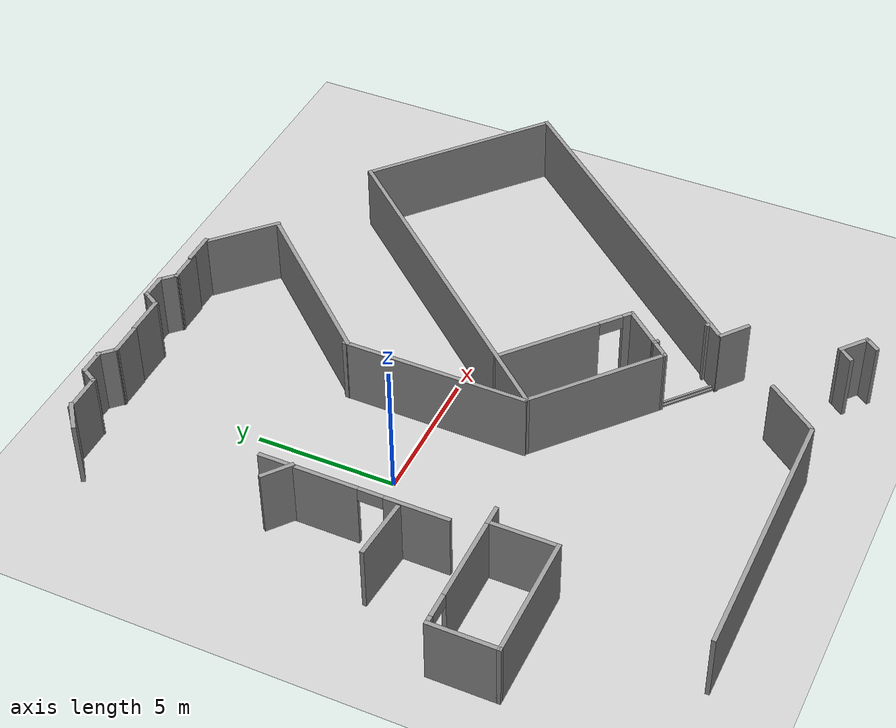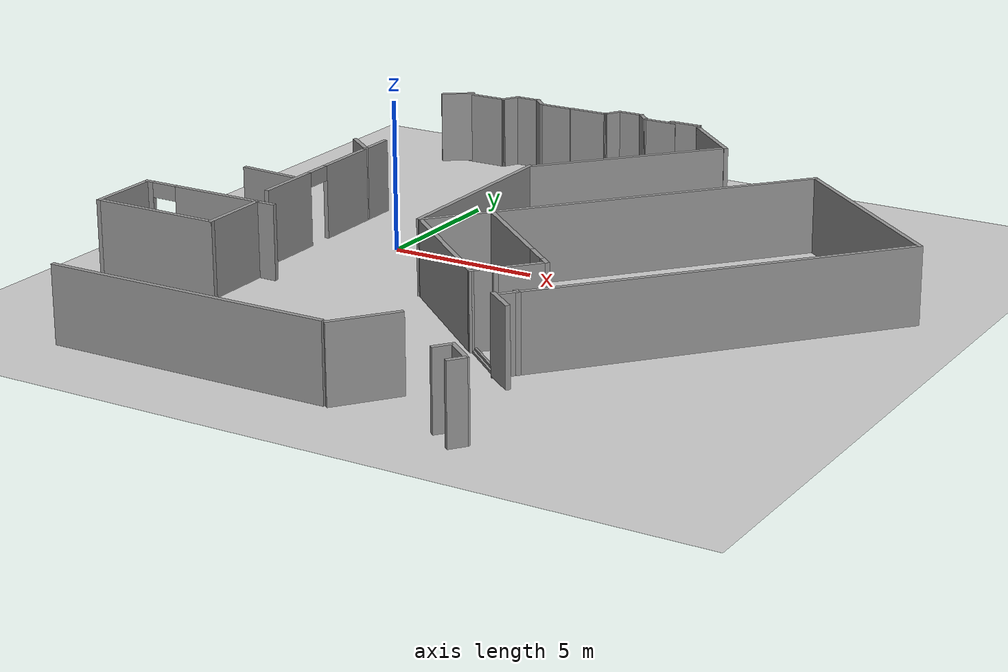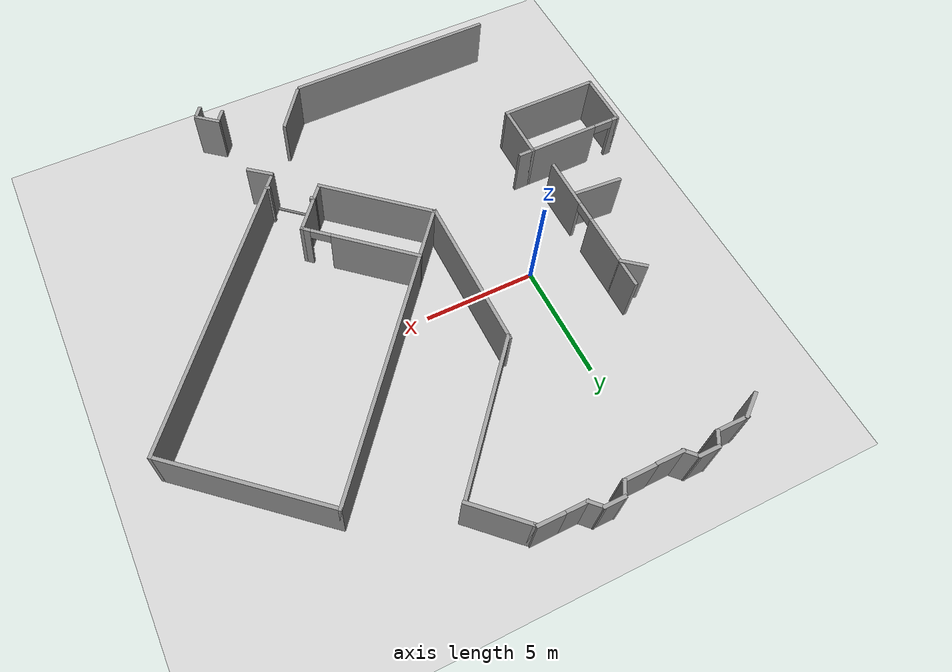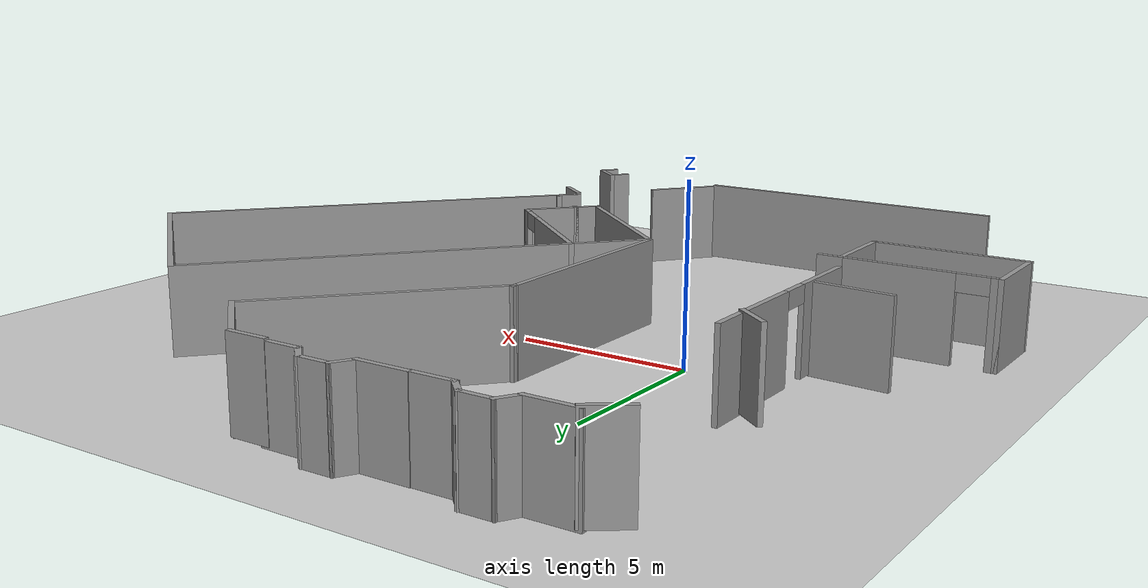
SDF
<sdf version="1.6">
 <world name="default">
  <model name="ground_plane">
   <static>1</static>
   <link name="link">
    <collision name="collision">
     <geometry><plane><normal>0 0 1</normal><size>100 100</size></plane></geometry>
     <surface>
      <contact><collide_bitmask>65535</collide_bitmask></contact>
      <friction><ode><mu>100</mu><mu2>50</mu2></ode></friction>
     </surface>
    </collision>
    <visual name="visual">
     <cast_shadows>0</cast_shadows>
     <geometry><plane><normal>0 0 1</normal><size>100 100</size></plane></geometry>
     <material>
      <script><uri>file://media/materials/scripts/gazebo.material</uri><name>Gazebo/Grey</name></script>
     </material>
    </visual>
   </link>
  </model>
  <model name="wall(6.75)_0_clone">
   <pose>3.09203 -0.032897 0 0 0 -1.5756</pose>
   <link name="Wall_106">
    <collision name="Wall_106_Collision">
     <geometry><box><size>6.75 0.15 2.5</size></box></geometry>
     <pose>0 0 1.25 0 -0 0</pose>
    </collision>
    <visual name="Wall_106_Visual">
     <pose>0 0 1.25 0 -0 0</pose>
     <geometry><box><size>6.75 0.15 2.5</size></box></geometry>
     <material>
      <script><uri>file://media/materials/scripts/gazebo.material</uri><name>Gazebo/Grey</name></script>
      <ambient>1 1 1 1</ambient>
     </material>
     <meta><layer>0</layer></meta>
    </visual>
   </link>
   <static>1</static>
  </model>
  <model name="wall(1.2)_clone">
   <link name="Wall_106">
    <inertial>
     <mass>1</mass>
     <inertia><ixx>1</ixx><ixy>0</ixy><ixz>0</ixz><iyy>1</iyy><iyz>0</iyz><izz>1</izz></inertia>
    </inertial>
    <visual name="Wall_106_Visual">
     <pose>0 0 1.25 0 -0 0</pose>
     <geometry><box><size>1.2 0.15 2.5</size></box></geometry>
     <material>
      <script><uri>file://media/materials/scripts/gazebo.material</uri><name>Gazebo/Grey</name></script>
      <ambient>1 1 1 1</ambient>
      <shader type="vertex"><normal_map>__default__</normal_map></shader>
      <diffuse>0.7 0.7 0.7 1</diffuse>
      <specular>0.01 0.01 0.01 1</specular>
      <emissive>0 0 0 1</emissive>
     </material>
     <meta><layer>0</layer></meta>
    </visual>
    <collision name="Wall_106_Collision">
     <pose>0 0 1.25 0 -0 0</pose>
     <geometry><box><size>6.75 0.15 2.5</size></box></geometry>
     <surface>
      <friction>
       <ode><mu>1</mu><mu2>1</mu2><fdir1>0 0 0</fdir1><slip1>0</slip1><slip2>0</slip2></ode>
       <torsional>
        <coefficient>1</coefficient>
        <patch_radius>0</patch_radius>
        <surface_radius>0</surface_radius>
        <use_patch_radius>1</use_patch_radius>
        <ode><slip>0</slip></ode>
       </torsional>
      </friction>
      <bounce><restitution_coefficient>0</restitution_coefficient><threshold>1e+06</threshold></bounce>
      <contact>
       <collide_without_contact>0</collide_without_contact>
       <collide_without_contact_bitmask>1</collide_without_contact_bitmask>
       <collide_bitmask>1</collide_bitmask>
       <ode>
        <soft_cfm>0</soft_cfm>
        <soft_erp>0.2</soft_erp>
        <kp>1e+13</kp>
        <kd>1</kd>
        <max_vel>0.01</max_vel>
        <min_depth>0</min_depth>
       </ode>
       <bullet>
        <split_impulse>1</split_impulse>
        <split_impulse_penetration_threshold>-0.01</split_impulse_penetration_threshold>
        <soft_cfm>0</soft_cfm>
        <soft_erp>0.2</soft_erp>
        <kp>1e+13</kp>
        <kd>1</kd>
       </bullet>
      </contact>
     </surface>
    </collision>
   </link>
   <static>1</static>
   <pose>-3.68257 9.64813 0.050769 0 -0 0.640713</pose>
  </model>
  <model name="lift">
   <pose>-1.30167 10.2174 0 0 0 -3.13924</pose>
   <link name="Wall_113">
    <collision name="Wall_113_Collision">
     <geometry><box><size>1.5 0.15 2.5</size></box></geometry>
     <pose>0 0 1.25 0 -0 0</pose>
    </collision>
    <visual name="Wall_113_Visual">
     <pose>0 0 1.25 0 -0 0</pose>
     <geometry><box><size>1.5 0.15 2.5</size></box></geometry>
     <material>
      <script><uri>file://media/materials/scripts/gazebo.material</uri><name>Gazebo/Grey</name></script>
      <ambient>1 1 1 1</ambient>
     </material>
     <meta><layer>0</layer></meta>
    </visual>
    <pose>1.33713 0.261614 0 0 -0 3.14159</pose>
   </link>
   <link name="Wall_114">
    <collision name="Wall_114_Collision">
     <geometry><box><size>0.75 0.15 2.5</size></box></geometry>
     <pose>0 0 1.25 0 -0 0</pose>
    </collision>
    <visual name="Wall_114_Visual">
     <pose>0 0 1.25 0 -0 0</pose>
     <geometry><box><size>0.75 0.15 2.5</size></box></geometry>
     <material>
      <script><uri>file://media/materials/scripts/gazebo.material</uri><name>Gazebo/Grey</name></script>
      <ambient>1 1 1 1</ambient>
     </material>
     <meta><layer>0</layer></meta>
    </visual>
    <pose>0.512132 0.001807 0 0 -0 -2.0944</pose>
   </link>
   <link name="Wall_115">
    <collision name="Wall_115_Collision">
     <geometry><box><size>1 0.15 2.5</size></box></geometry>
     <pose>0 0 1.25 0 -0 0</pose>
    </collision>
    <visual name="Wall_115_Visual">
     <pose>0 0 1.25 0 -0 0</pose>
     <geometry><box><size>1 0.15 2.5</size></box></geometry>
     <material>
      <script><uri>file://media/materials/scripts/gazebo.material</uri><name>Gazebo/Grey</name></script>
      <ambient>1 1 1 1</ambient>
     </material>
     <meta><layer>0</layer></meta>
    </visual>
    <pose>-0.062868 -0.258001 0 0 -0 3.14159</pose>
   </link>
   <link name="Wall_116">
    <collision name="Wall_116_Collision">
     <geometry><box><size>0.75 0.15 2.5</size></box></geometry>
     <pose>0 0 1.25 0 -0 0</pose>
    </collision>
    <visual name="Wall_116_Visual">
     <pose>0 0 1.25 0 -0 0</pose>
     <geometry><box><size>0.75 0.15 2.5</size></box></geometry>
     <material>
      <script><uri>file://media/materials/scripts/gazebo.material</uri><name>Gazebo/Grey</name></script>
      <ambient>1 1 1 1</ambient>
     </material>
     <meta><layer>0</layer></meta>
    </visual>
    <pose>-0.7 -0.045868 0 0 -0 2.35619</pose>
   </link>
   <link name="Wall_117">
    <collision name="Wall_117_Collision">
     <geometry><box><size>1.25 0.15 2.5</size></box></geometry>
     <pose>0 0 1.25 0 -0 0</pose>
    </collision>
    <visual name="Wall_117_Visual">
     <pose>0 0 1.25 0 -0 0</pose>
     <geometry><box><size>1.25 0.15 2.5</size></box></geometry>
     <material>
      <script><uri>file://media/materials/scripts/gazebo.material</uri><name>Gazebo/Grey</name></script>
      <ambient>1 1 1 1</ambient>
     </material>
     <meta><layer>0</layer></meta>
    </visual>
    <pose>-1.46213 0.166263 0 0 -0 3.14159</pose>
   </link>
   <static>1</static>
  </model>
  <model name="lift_clone">
   <pose>2.81764 10.3434 0 0 0 -3.13924</pose>
   <link name="Wall_113">
    <collision name="Wall_113_Collision">
     <geometry><box><size>1.5 0.15 2.5</size></box></geometry>
     <pose>0 0 1.25 0 -0 0</pose>
    </collision>
    <visual name="Wall_113_Visual">
     <pose>0 0 1.25 0 -0 0</pose>
     <geometry><box><size>1.5 0.15 2.5</size></box></geometry>
     <material>
      <script><uri>file://media/materials/scripts/gazebo.material</uri><name>Gazebo/Grey</name></script>
      <ambient>1 1 1 1</ambient>
     </material>
     <meta><layer>0</layer></meta>
    </visual>
    <pose>1.33713 0.261614 0 0 -0 3.14159</pose>
   </link>
   <link name="Wall_114">
    <collision name="Wall_114_Collision">
     <geometry><box><size>0.75 0.15 2.5</size></box></geometry>
     <pose>0 0 1.25 0 -0 0</pose>
    </collision>
    <visual name="Wall_114_Visual">
     <pose>0 0 1.25 0 -0 0</pose>
     <geometry><box><size>0.75 0.15 2.5</size></box></geometry>
     <material>
      <script><uri>file://media/materials/scripts/gazebo.material</uri><name>Gazebo/Grey</name></script>
      <ambient>1 1 1 1</ambient>
     </material>
     <meta><layer>0</layer></meta>
    </visual>
    <pose>0.512132 0.001807 0 0 -0 -2.0944</pose>
   </link>
   <link name="Wall_115">
    <collision name="Wall_115_Collision">
     <geometry><box><size>1 0.15 2.5</size></box></geometry>
     <pose>0 0 1.25 0 -0 0</pose>
    </collision>
    <visual name="Wall_115_Visual">
     <pose>0 0 1.25 0 -0 0</pose>
     <geometry><box><size>1 0.15 2.5</size></box></geometry>
     <material>
      <script><uri>file://media/materials/scripts/gazebo.material</uri><name>Gazebo/Grey</name></script>
      <ambient>1 1 1 1</ambient>
     </material>
     <meta><layer>0</layer></meta>
    </visual>
    <pose>-0.062868 -0.258001 0 0 -0 3.14159</pose>
   </link>
   <link name="Wall_116">
    <collision name="Wall_116_Collision">
     <geometry><box><size>0.75 0.15 2.5</size></box></geometry>
     <pose>0 0 1.25 0 -0 0</pose>
    </collision>
    <visual name="Wall_116_Visual">
     <pose>0 0 1.25 0 -0 0</pose>
     <geometry><box><size>0.75 0.15 2.5</size></box></geometry>
     <material>
      <script><uri>file://media/materials/scripts/gazebo.material</uri><name>Gazebo/Grey</name></script>
      <ambient>1 1 1 1</ambient>
     </material>
     <meta><layer>0</layer></meta>
    </visual>
    <pose>-0.7 -0.045868 0 0 -0 2.35619</pose>
   </link>
   <link name="Wall_117">
    <collision name="Wall_117_Collision">
     <geometry><box><size>1.25 0.15 2.5</size></box></geometry>
     <pose>0 0 1.25 0 -0 0</pose>
    </collision>
    <visual name="Wall_117_Visual">
     <pose>0 0 1.25 0 -0 0</pose>
     <geometry><box><size>1.25 0.15 2.5</size></box></geometry>
     <material>
      <script><uri>file://media/materials/scripts/gazebo.material</uri><name>Gazebo/Grey</name></script>
      <ambient>1 1 1 1</ambient>
     </material>
     <meta><layer>0</layer></meta>
    </visual>
    <pose>-1.46213 0.166263 0 0 -0 3.14159</pose>
   </link>
   <static>1</static>
  </model>
  <model name="wall(6.9)_clone">
   <link name="Wall_106">
    <inertial>
     <mass>1</mass>
     <inertia><ixx>1</ixx><ixy>0</ixy><ixz>0</ixz><iyy>1</iyy><iyz>0</iyz><izz>1</izz></inertia>
    </inertial>
    <visual name="Wall_106_Visual">
     <pose>0 0 1.25 0 -0 0</pose>
     <geometry><box><size>6.9 0.15 2.5</size></box></geometry>
     <material>
      <script><uri>file://media/materials/scripts/gazebo.material</uri><name>Gazebo/Grey</name></script>
      <ambient>1 1 1 1</ambient>
      <shader type="vertex"><normal_map>__default__</normal_map></shader>
      <diffuse>0.7 0.7 0.7 1</diffuse>
      <specular>0.01 0.01 0.01 1</specular>
      <emissive>0 0 0 1</emissive>
     </material>
     <meta><layer>0</layer></meta>
    </visual>
    <collision name="Wall_106_Collision">
     <pose>0 0 1.25 0 -0 0</pose>
     <geometry><box><size>6.75 0.15 2.5</size></box></geometry>
     <surface>
      <friction>
       <ode><mu>1</mu><mu2>1</mu2><fdir1>0 0 0</fdir1><slip1>0</slip1><slip2>0</slip2></ode>
       <torsional>
        <coefficient>1</coefficient>
        <patch_radius>0</patch_radius>
        <surface_radius>0</surface_radius>
        <use_patch_radius>1</use_patch_radius>
        <ode><slip>0</slip></ode>
       </torsional>
      </friction>
      <bounce><restitution_coefficient>0</restitution_coefficient><threshold>1e+06</threshold></bounce>
      <contact>
       <collide_without_contact>0</collide_without_contact>
       <collide_without_contact_bitmask>1</collide_without_contact_bitmask>
       <collide_bitmask>1</collide_bitmask>
       <ode>
        <soft_cfm>0</soft_cfm>
        <soft_erp>0.2</soft_erp>
        <kp>1e+13</kp>
        <kd>1</kd>
        <max_vel>0.01</max_vel>
        <min_depth>0</min_depth>
       </ode>
       <bullet>
        <split_impulse>1</split_impulse>
        <split_impulse_penetration_threshold>-0.01</split_impulse_penetration_threshold>
        <soft_cfm>0</soft_cfm>
        <soft_erp>0.2</soft_erp>
        <kp>1e+13</kp>
        <kd>1</kd>
       </bullet>
      </contact>
     </surface>
    </collision>
   </link>
   <static>1</static>
   <pose>5.35911 5.71378 0 0 0 -2.29576</pose>
  </model>
  <model name="wall_6.75_clone">
   <pose>6.76863 9.22687 0 0 -0 2.38301</pose>
   <link name="Wall_108">
    <collision name="Wall_108_Collision">
     <geometry><box><size>2.75 0.15 2.5</size></box></geometry>
     <pose>0 0 1.25 0 -0 0</pose>
    </collision>
    <visual name="Wall_108_Visual">
     <pose>0 0 1.25 0 -0 0</pose>
     <geometry><box><size>2.75 0.15 2.5</size></box></geometry>
     <material>
      <script><uri>file://media/materials/scripts/gazebo.material</uri><name>Gazebo/Grey</name></script>
      <ambient>1 1 1 1</ambient>
     </material>
     <meta><layer>0</layer></meta>
    </visual>
   </link>
   <link name="Wall_109">
    <collision name="Wall_109_Collision">
     <geometry><box><size>0.15 0.15 2.5</size></box></geometry>
     <pose>0 0 1.25 0 -0 0</pose>
    </collision>
    <visual name="Wall_109_Visual">
     <pose>0 0 1.25 0 -0 0</pose>
     <geometry><box><size>0.15 0.15 2.5</size></box></geometry>
     <material>
      <script><uri>file://media/materials/scripts/gazebo.material</uri><name>Gazebo/Grey</name></script>
      <ambient>0 0 0 1</ambient>
     </material>
     <meta><layer>0</layer></meta>
    </visual>
    <pose>1.3 0 0 0 -0 0</pose>
   </link>
   <static>1</static>
  </model>
  <model name="wall(1.2)_clone_0">
   <link name="Wall_106">
    <inertial>
     <mass>1</mass>
     <inertia><ixx>1</ixx><ixy>0</ixy><ixz>0</ixz><iyy>1</iyy><iyz>0</iyz><izz>1</izz></inertia>
    </inertial>
    <visual name="Wall_106_Visual">
     <pose>0 0 1.25 0 -0 0</pose>
     <geometry><box><size>1.2 0.15 2.5</size></box></geometry>
     <material>
      <script><uri>file://media/materials/scripts/gazebo.material</uri><name>Gazebo/Grey</name></script>
      <ambient>1 1 1 1</ambient>
      <shader type="vertex"><normal_map>__default__</normal_map></shader>
      <diffuse>0.7 0.7 0.7 1</diffuse>
      <specular>0.01 0.01 0.01 1</specular>
      <emissive>0 0 0 1</emissive>
     </material>
     <meta><layer>0</layer></meta>
    </visual>
    <collision name="Wall_106_Collision">
     <pose>0 0 1.25 0 -0 0</pose>
     <geometry><box><size>6.75 0.15 2.5</size></box></geometry>
     <surface>
      <friction>
       <ode><mu>1</mu><mu2>1</mu2><fdir1>0 0 0</fdir1><slip1>0</slip1><slip2>0</slip2></ode>
       <torsional>
        <coefficient>1</coefficient>
        <patch_radius>0</patch_radius>
        <surface_radius>0</surface_radius>
        <use_patch_radius>1</use_patch_radius>
        <ode><slip>0</slip></ode>
       </torsional>
      </friction>
      <bounce><restitution_coefficient>0</restitution_coefficient><threshold>1e+06</threshold></bounce>
      <contact>
       <collide_without_contact>0</collide_without_contact>
       <collide_without_contact_bitmask>1</collide_without_contact_bitmask>
       <collide_bitmask>1</collide_bitmask>
       <ode>
        <soft_cfm>0</soft_cfm>
        <soft_erp>0.2</soft_erp>
        <kp>1e+13</kp>
        <kd>1</kd>
        <max_vel>0.01</max_vel>
        <min_depth>0</min_depth>
       </ode>
       <bullet>
        <split_impulse>1</split_impulse>
        <split_impulse_penetration_threshold>-0.01</split_impulse_penetration_threshold>
        <soft_cfm>0</soft_cfm>
        <soft_erp>0.2</soft_erp>
        <kp>1e+13</kp>
        <kd>1</kd>
       </bullet>
      </contact>
     </surface>
    </collision>
   </link>
   <static>1</static>
   <pose>5.2521 10.1955 0.050769 0 -0 0.00317</pose>
  </model>
  <model name="1804">
   <pose>10.1904 -0.701306 0 0 0 -0.710113</pose>
   <link name="Stairs_1">
    <visual name="Stairs_1_Visual_0">
     <pose>2.5799 -6.58604 0.0375 0 -0 -3.14159</pose>
     <geometry><box><size>2.12 0.075 0.075</size></box></geometry>
     <material>
      <script><uri>file://media/materials/scripts/gazebo.material</uri><name>Gazebo/Grey</name></script>
      <ambient>1 1 1 1</ambient>
     </material>
     <meta><layer>0</layer></meta>
    </visual>
    <collision name="Stairs_1_Collision_0">
     <geometry><box><size>2.12 0.075 0.075</size></box></geometry>
     <pose>2.5799 -6.58604 0.0375 0 -0 -3.14159</pose>
    </collision>
    <visual name="Stairs_1_Visual_1">
     <pose>2.5799 -6.51104 0.1125 0 -0 -3.14159</pose>
     <geometry><box><size>2.12 0.075 0.075</size></box></geometry>
     <material>
      <script><uri>file://media/materials/scripts/gazebo.material</uri><name>Gazebo/Grey</name></script>
      <ambient>1 1 1 1</ambient>
     </material>
     <meta><layer>0</layer></meta>
    </visual>
    <collision name="Stairs_1_Collision_1">
     <geometry><box><size>2.12 0.075 0.075</size></box></geometry>
     <pose>2.5799 -6.51104 0.1125 0 -0 -3.14159</pose>
    </collision>
   </link>
   <link name="Wall_40">
    <collision name="Wall_40_Collision">
     <geometry><box><size>5.25 0.15 2.5</size></box></geometry>
     <pose>0 0 1.25 0 -0 0</pose>
    </collision>
    <visual name="Wall_40_Visual">
     <pose>0 0 1.25 0 -0 0</pose>
     <geometry><box><size>5.25 0.15 2.5</size></box></geometry>
     <material>
      <script><uri>file://media/materials/scripts/gazebo.material</uri><name>Gazebo/Grey</name></script>
      <ambient>1 1 1 1</ambient>
     </material>
     <meta><layer>0</layer></meta>
    </visual>
    <pose>-1.0762 -6.6225 0 0 -0 3.14159</pose>
   </link>
   <link name="Wall_41">
    <collision name="Wall_41_Collision">
     <geometry><box><size>13.395 0.15 2.5</size></box></geometry>
     <pose>0 0 1.25 0 -0 0</pose>
    </collision>
    <visual name="Wall_41_Visual">
     <pose>0 0 1.25 0 -0 0</pose>
     <geometry><box><size>13.395 0.15 2.5</size></box></geometry>
     <material>
      <script><uri>file://media/materials/scripts/gazebo.material</uri><name>Gazebo/Grey</name></script>
      <ambient>1 1 1 1</ambient>
     </material>
     <meta><layer>0</layer></meta>
    </visual>
    <pose>-3.6262 0 0 0 -0 1.5708</pose>
   </link>
   <link name="Wall_42">
    <collision name="Wall_42_Collision">
     <geometry><box><size>7.397 0.15 2.5</size></box></geometry>
     <pose>0 0 1.25 0 -0 0</pose>
    </collision>
    <visual name="Wall_42_Visual">
     <pose>0 0 1.25 0 -0 0</pose>
     <geometry><box><size>7.397 0.15 2.5</size></box></geometry>
     <material>
      <script><uri>file://media/materials/scripts/gazebo.material</uri><name>Gazebo/Grey</name></script>
      <ambient>1 1 1 1</ambient>
     </material>
     <meta><layer>0</layer></meta>
    </visual>
    <pose>-0.002699 6.6225 0 0 -0 0</pose>
   </link>
   <link name="Wall_43">
    <collision name="Wall_43_Collision">
     <geometry><box><size>13.3954 0.15 2.5</size></box></geometry>
     <pose>0 0 1.25 0 -0 0</pose>
    </collision>
    <visual name="Wall_43_Visual">
     <pose>0 0 1.25 0 -0 0</pose>
     <geometry><box><size>13.3954 0.15 2.5</size></box></geometry>
     <material>
      <script><uri>file://media/materials/scripts/gazebo.material</uri><name>Gazebo/Grey</name></script>
      <ambient>1 1 1 1</ambient>
     </material>
     <meta><layer>0</layer></meta>
    </visual>
    <pose>3.6208 0 0 0 -0 -1.5708</pose>
   </link>
   <link name="Wall_45">
    <collision name="Wall_45_Collision">
     <geometry><box><size>0.854548 0.15 2.5</size></box></geometry>
     <pose>0 0 1.25 0 -0 0</pose>
    </collision>
    <visual name="Wall_45_Visual">
     <pose>0 0 1.25 0 -0 0</pose>
     <geometry><box><size>0.854548 0.15 2.5</size></box></geometry>
     <material>
      <script><uri>file://media/materials/scripts/gazebo.material</uri><name>Gazebo/Grey</name></script>
      <ambient>1 1 1 1</ambient>
     </material>
     <meta><layer>0</layer></meta>
    </visual>
    <pose>1.47361 -6.27023 0 0 -0 1.57135</pose>
   </link>
   <link name="Wall_46">
    <collision name="Wall_46_Collision">
     <geometry><box><size>0.25 0.15 2.5</size></box></geometry>
     <pose>0 0 1.25 0 -0 0</pose>
    </collision>
    <visual name="Wall_46_Visual">
     <pose>0 0 1.25 0 -0 0</pose>
     <geometry><box><size>0.25 0.15 2.5</size></box></geometry>
     <material>
      <script><uri>file://media/materials/scripts/gazebo.material</uri><name>Gazebo/Grey</name></script>
      <ambient>1 1 1 1</ambient>
     </material>
     <meta><layer>0</layer></meta>
    </visual>
    <pose>1.52341 -5.91795 0 0 -0 0</pose>
   </link>
   <link name="Wall_48">
    <collision name="Wall_48_Collision">
     <geometry><box><size>0.25 0.15 2.5</size></box></geometry>
     <pose>0 0 1.25 0 -0 0</pose>
    </collision>
    <visual name="Wall_48_Visual">
     <pose>0 0 1.25 0 -0 0</pose>
     <geometry><box><size>0.25 0.15 2.5</size></box></geometry>
     <material>
      <script><uri>file://media/materials/scripts/gazebo.material</uri><name>Gazebo/Grey</name></script>
      <ambient>1 1 1 1</ambient>
     </material>
     <meta><layer>0</layer></meta>
    </visual>
    <pose>3.57659 -5.92481 0 0 -0 0</pose>
   </link>
   <link name="Wall_50">
    <collision name="Wall_50_Collision">
     <geometry><box><size>1.75 0.15 2.5</size></box></geometry>
     <pose>0 0 1.25 0 -0 0</pose>
    </collision>
    <visual name="Wall_50_Visual">
     <pose>0 0 1.25 0 -0 0</pose>
     <geometry><box><size>1.75 0.15 2.5</size></box></geometry>
     <material>
      <script><uri>file://media/materials/scripts/gazebo.material</uri><name>Gazebo/Grey</name></script>
      <ambient>1 1 1 1</ambient>
     </material>
     <meta><layer>0</layer></meta>
    </visual>
    <pose>1.47341 -5.11795 0 0 -0 1.5708</pose>
   </link>
   <link name="Wall_51">
    <pose>-1.07659 -4.31795 0 0 -0 3.14159</pose>
    <visual name="Wall_51_Visual_0">
     <pose>-2.40355 0 1.25 0 -0 0</pose>
     <geometry><box><size>0.442906 0.15 2.5</size></box></geometry>
     <material>
      <script><uri>file://media/materials/scripts/gazebo.material</uri><name>Gazebo/Grey</name></script>
      <ambient>1 1 1 1</ambient>
     </material>
     <meta><layer>0</layer></meta>
    </visual>
    <collision name="Wall_51_Collision_0">
     <geometry><box><size>0.442906 0.15 2.5</size></box></geometry>
     <pose>-2.40355 0 1.25 0 -0 0</pose>
    </collision>
    <visual name="Wall_51_Visual_1">
     <pose>0.671453 0 1.25 0 -0 0</pose>
     <geometry><box><size>3.90709 0.15 2.5</size></box></geometry>
     <material>
      <script><uri>file://media/materials/scripts/gazebo.material</uri><name>Gazebo/Grey</name></script>
      <ambient>1 1 1 1</ambient>
     </material>
     <meta><layer>0</layer></meta>
    </visual>
    <collision name="Wall_51_Collision_1">
     <geometry><box><size>3.90709 0.15 2.5</size></box></geometry>
     <pose>0.671453 0 1.25 0 -0 0</pose>
    </collision>
    <visual name="Wall_51_Visual_2">
     <pose>-1.73209 0 2.25 0 -0 0</pose>
     <geometry><box><size>0.9 0.15 0.5</size></box></geometry>
     <material>
      <script><uri>file://media/materials/scripts/gazebo.material</uri><name>Gazebo/Grey</name></script>
      <ambient>1 1 1 1</ambient>
     </material>
     <meta><layer>0</layer></meta>
    </visual>
    <collision name="Wall_51_Collision_2">
     <geometry><box><size>0.9 0.15 0.5</size></box></geometry>
     <pose>-1.73209 0 2.25 0 -0 0</pose>
    </collision>
   </link>
   <static>1</static>
  </model>
  <model name="wall(1.2)_clone_0_clone">
   <link name="Wall_106">
    <inertial>
     <mass>1</mass>
     <inertia><ixx>1</ixx><ixy>0</ixy><ixz>0</ixz><iyy>1</iyy><iyz>0</iyz><izz>1</izz></inertia>
    </inertial>
    <visual name="Wall_106_Visual">
     <pose>0 0 1.25 0 -0 0</pose>
     <geometry><box><size>1.2 0.15 2.5</size></box></geometry>
     <material>
      <script><uri>file://media/materials/scripts/gazebo.material</uri><name>Gazebo/Grey</name></script>
      <ambient>1 1 1 1</ambient>
      <shader type="vertex"><normal_map>__default__</normal_map></shader>
      <diffuse>0.7 0.7 0.7 1</diffuse>
      <specular>0.01 0.01 0.01 1</specular>
      <emissive>0 0 0 1</emissive>
     </material>
     <meta><layer>0</layer></meta>
    </visual>
    <collision name="Wall_106_Collision">
     <pose>0 0 1.25 0 -0 0</pose>
     <geometry><box><size>6.75 0.15 2.5</size></box></geometry>
     <surface>
      <friction>
       <ode><mu>1</mu><mu2>1</mu2><fdir1>0 0 0</fdir1><slip1>0</slip1><slip2>0</slip2></ode>
       <torsional>
        <coefficient>1</coefficient>
        <patch_radius>0</patch_radius>
        <surface_radius>0</surface_radius>
        <use_patch_radius>1</use_patch_radius>
        <ode><slip>0</slip></ode>
       </torsional>
      </friction>
      <bounce><restitution_coefficient>0</restitution_coefficient><threshold>1e+06</threshold></bounce>
      <contact>
       <collide_without_contact>0</collide_without_contact>
       <collide_without_contact_bitmask>1</collide_without_contact_bitmask>
       <collide_bitmask>1</collide_bitmask>
       <ode>
        <soft_cfm>0</soft_cfm>
        <soft_erp>0.2</soft_erp>
        <kp>1e+13</kp>
        <kd>1</kd>
        <max_vel>0.01</max_vel>
        <min_depth>0</min_depth>
       </ode>
       <bullet>
        <split_impulse>1</split_impulse>
        <split_impulse_penetration_threshold>-0.01</split_impulse_penetration_threshold>
        <soft_cfm>0</soft_cfm>
        <soft_erp>0.2</soft_erp>
        <kp>1e+13</kp>
        <kd>1</kd>
       </bullet>
      </contact>
     </surface>
    </collision>
   </link>
   <static>1</static>
   <pose>9.03825 -8.42687 0.050769 0 0 -0.668417</pose>
  </model>
  <model name="wall(0.6)_clone">
   <link name="Wall_0">
    <inertial>
     <mass>1</mass>
     <inertia><ixx>1</ixx><ixy>0</ixy><ixz>0</ixz><iyy>1</iyy><iyz>0</iyz><izz>1</izz></inertia>
    </inertial>
    <visual name="Wall_0_Visual">
     <pose>0 0 1.25 0 -0 0</pose>
     <geometry><box><size>0.6 0.15 2.5</size></box></geometry>
     <material>
      <script><uri>file://media/materials/scripts/gazebo.material</uri><name>Gazebo/Grey</name></script>
      <ambient>1 1 1 1</ambient>
      <shader type="vertex"><normal_map>__default__</normal_map></shader>
      <diffuse>0.7 0.7 0.7 1</diffuse>
      <specular>0.01 0.01 0.01 1</specular>
      <emissive>0 0 0 1</emissive>
     </material>
     <meta><layer>0</layer></meta>
    </visual>
    <collision name="Wall_0_Collision">
     <pose>0 0 1.25 0 -0 0</pose>
     <geometry><box><size>2.25 0.15 2.5</size></box></geometry>
     <surface>
      <friction>
       <ode><mu>1</mu><mu2>1</mu2><fdir1>0 0 0</fdir1><slip1>0</slip1><slip2>0</slip2></ode>
       <torsional>
        <coefficient>1</coefficient>
        <patch_radius>0</patch_radius>
        <surface_radius>0</surface_radius>
        <use_patch_radius>1</use_patch_radius>
        <ode><slip>0</slip></ode>
       </torsional>
      </friction>
      <bounce><restitution_coefficient>0</restitution_coefficient><threshold>1e+06</threshold></bounce>
      <contact>
       <collide_without_contact>0</collide_without_contact>
       <collide_without_contact_bitmask>1</collide_without_contact_bitmask>
       <collide_bitmask>1</collide_bitmask>
       <ode>
        <soft_cfm>0</soft_cfm>
        <soft_erp>0.2</soft_erp>
        <kp>1e+13</kp>
        <kd>1</kd>
        <max_vel>0.01</max_vel>
        <min_depth>0</min_depth>
       </ode>
       <bullet>
        <split_impulse>1</split_impulse>
        <split_impulse_penetration_threshold>-0.01</split_impulse_penetration_threshold>
        <soft_cfm>0</soft_cfm>
        <soft_erp>0.2</soft_erp>
        <kp>1e+13</kp>
        <kd>1</kd>
       </bullet>
      </contact>
     </surface>
    </collision>
   </link>
   <static>1</static>
   <pose>10.3626 -12.8381 0 0 0 -2.22485</pose>
  </model>
  <model name="wall(1.2)_0_clone">
   <link name="Wall_106">
    <inertial>
     <mass>1</mass>
     <inertia><ixx>1</ixx><ixy>0</ixy><ixz>0</ixz><iyy>1</iyy><iyz>0</iyz><izz>1</izz></inertia>
    </inertial>
    <visual name="Wall_106_Visual">
     <pose>0 0 1.25 0 -0 0</pose>
     <geometry><box><size>1.2 0.15 2.5</size></box></geometry>
     <material>
      <script><uri>file://media/materials/scripts/gazebo.material</uri><name>Gazebo/Grey</name></script>
      <ambient>1 1 1 1</ambient>
      <shader type="vertex"><normal_map>__default__</normal_map></shader>
      <diffuse>0.7 0.7 0.7 1</diffuse>
      <specular>0.01 0.01 0.01 1</specular>
      <emissive>0 0 0 1</emissive>
     </material>
     <meta><layer>0</layer></meta>
    </visual>
    <collision name="Wall_106_Collision">
     <pose>0 0 1.25 0 -0 0</pose>
     <geometry><box><size>6.75 0.15 2.5</size></box></geometry>
     <surface>
      <friction>
       <ode><mu>1</mu><mu2>1</mu2><fdir1>0 0 0</fdir1><slip1>0</slip1><slip2>0</slip2></ode>
       <torsional>
        <coefficient>1</coefficient>
        <patch_radius>0</patch_radius>
        <surface_radius>0</surface_radius>
        <use_patch_radius>1</use_patch_radius>
        <ode><slip>0</slip></ode>
       </torsional>
      </friction>
      <bounce><restitution_coefficient>0</restitution_coefficient><threshold>1e+06</threshold></bounce>
      <contact>
       <collide_without_contact>0</collide_without_contact>
       <collide_without_contact_bitmask>1</collide_without_contact_bitmask>
       <collide_bitmask>1</collide_bitmask>
       <ode>
        <soft_cfm>0</soft_cfm>
        <soft_erp>0.2</soft_erp>
        <kp>1e+13</kp>
        <kd>1</kd>
        <max_vel>0.01</max_vel>
        <min_depth>0</min_depth>
       </ode>
       <bullet>
        <split_impulse>1</split_impulse>
        <split_impulse_penetration_threshold>-0.01</split_impulse_penetration_threshold>
        <soft_cfm>0</soft_cfm>
        <soft_erp>0.2</soft_erp>
        <kp>1e+13</kp>
        <kd>1</kd>
       </bullet>
      </contact>
     </surface>
    </collision>
   </link>
   <static>1</static>
   <pose>10.1236 -12.2724 0 0 0 -0.686967</pose>
  </model>
  <model name="wall(0.6)_clone_clone">
   <link name="Wall_0">
    <inertial>
     <mass>1</mass>
     <inertia><ixx>1</ixx><ixy>0</ixy><ixz>0</ixz><iyy>1</iyy><iyz>0</iyz><izz>1</izz></inertia>
    </inertial>
    <visual name="Wall_0_Visual">
     <pose>0 0 1.25 0 -0 0</pose>
     <geometry><box><size>0.6 0.15 2.5</size></box></geometry>
     <material>
      <script><uri>file://media/materials/scripts/gazebo.material</uri><name>Gazebo/Grey</name></script>
      <ambient>1 1 1 1</ambient>
      <shader type="vertex"><normal_map>__default__</normal_map></shader>
      <diffuse>0.7 0.7 0.7 1</diffuse>
      <specular>0.01 0.01 0.01 1</specular>
      <emissive>0 0 0 1</emissive>
     </material>
     <meta><layer>0</layer></meta>
    </visual>
    <collision name="Wall_0_Collision">
     <pose>0 0 1.25 0 -0 0</pose>
     <geometry><box><size>2.25 0.15 2.5</size></box></geometry>
     <surface>
      <friction>
       <ode><mu>1</mu><mu2>1</mu2><fdir1>0 0 0</fdir1><slip1>0</slip1><slip2>0</slip2></ode>
       <torsional>
        <coefficient>1</coefficient>
        <patch_radius>0</patch_radius>
        <surface_radius>0</surface_radius>
        <use_patch_radius>1</use_patch_radius>
        <ode><slip>0</slip></ode>
       </torsional>
      </friction>
      <bounce><restitution_coefficient>0</restitution_coefficient><threshold>1e+06</threshold></bounce>
      <contact>
       <collide_without_contact>0</collide_without_contact>
       <collide_without_contact_bitmask>1</collide_without_contact_bitmask>
       <collide_bitmask>1</collide_bitmask>
       <ode>
        <soft_cfm>0</soft_cfm>
        <soft_erp>0.2</soft_erp>
        <kp>1e+13</kp>
        <kd>1</kd>
        <max_vel>0.01</max_vel>
        <min_depth>0</min_depth>
       </ode>
       <bullet>
        <split_impulse>1</split_impulse>
        <split_impulse_penetration_threshold>-0.01</split_impulse_penetration_threshold>
        <soft_cfm>0</soft_cfm>
        <soft_erp>0.2</soft_erp>
        <kp>1e+13</kp>
        <kd>1</kd>
       </bullet>
      </contact>
     </surface>
    </collision>
   </link>
   <static>1</static>
   <pose>9.51238 -12.2087 0 0 0 -2.22485</pose>
  </model>
  <model name="wall(2.3)">
   <link name="Wall_0">
    <pose>0.83486 -0.115986 -0.042972 0 -0 0</pose>
    <inertial>
     <mass>1</mass>
     <inertia><ixx>1</ixx><ixy>0</ixy><ixz>0</ixz><iyy>1</iyy><iyz>0</iyz><izz>1</izz></inertia>
    </inertial>
    <visual name="Wall_0_Visual">
     <pose>0 0 1.25 0 -0 0</pose>
     <geometry><box><size>2.3 0.15 2.5</size></box></geometry>
     <material>
      <script><uri>file://media/materials/scripts/gazebo.material</uri><name>Gazebo/Grey</name></script>
      <ambient>1 1 1 1</ambient>
      <shader type="vertex"><normal_map>__default__</normal_map></shader>
      <diffuse>0.7 0.7 0.7 1</diffuse>
      <specular>0.01 0.01 0.01 1</specular>
      <emissive>0 0 0 1</emissive>
     </material>
     <meta><layer>0</layer></meta>
    </visual>
    <collision name="Wall_0_Collision">
     <pose>0 0 1.25 0 -0 0</pose>
     <geometry><box><size>2.25 0.15 2.5</size></box></geometry>
     <surface>
      <friction>
       <ode><mu>1</mu><mu2>1</mu2><fdir1>0 0 0</fdir1><slip1>0</slip1><slip2>0</slip2></ode>
       <torsional>
        <coefficient>1</coefficient>
        <patch_radius>0</patch_radius>
        <surface_radius>0</surface_radius>
        <use_patch_radius>1</use_patch_radius>
        <ode><slip>0</slip></ode>
       </torsional>
      </friction>
      <bounce><restitution_coefficient>0</restitution_coefficient><threshold>1e+06</threshold></bounce>
      <contact>
       <collide_without_contact>0</collide_without_contact>
       <collide_without_contact_bitmask>1</collide_without_contact_bitmask>
       <collide_bitmask>1</collide_bitmask>
       <ode>
        <soft_cfm>0</soft_cfm>
        <soft_erp>0.2</soft_erp>
        <kp>1e+13</kp>
        <kd>1</kd>
        <max_vel>0.01</max_vel>
        <min_depth>0</min_depth>
       </ode>
       <bullet>
        <split_impulse>1</split_impulse>
        <split_impulse_penetration_threshold>-0.01</split_impulse_penetration_threshold>
        <soft_cfm>0</soft_cfm>
        <soft_erp>0.2</soft_erp>
        <kp>1e+13</kp>
        <kd>1</kd>
       </bullet>
      </contact>
     </surface>
    </collision>
   </link>
   <static>1</static>
   <pose>7.03691 -10.7173 0 0 0 -2.22485</pose>
  </model>
  <model name="wall(9.5)">
   <link name="Wall_106">
    <pose>-2.9353 0.017524 0 0 0 -0.005631</pose>
    <inertial>
     <mass>1</mass>
     <inertia><ixx>1</ixx><ixy>0</ixy><ixz>0</ixz><iyy>1</iyy><iyz>0</iyz><izz>1</izz></inertia>
    </inertial>
    <visual name="Wall_106_Visual">
     <pose>0 0 1.25 0 -0 0</pose>
     <geometry><box><size>9.5 0.15 2.5</size></box></geometry>
     <material>
      <script><uri>file://media/materials/scripts/gazebo.material</uri><name>Gazebo/Grey</name></script>
      <ambient>1 1 1 1</ambient>
      <shader type="vertex"><normal_map>__default__</normal_map></shader>
      <diffuse>0.7 0.7 0.7 1</diffuse>
      <specular>0.01 0.01 0.01 1</specular>
      <emissive>0 0 0 1</emissive>
     </material>
     <meta><layer>0</layer></meta>
    </visual>
    <collision name="Wall_106_Collision">
     <pose>0 0 1.25 0 -0 0</pose>
     <geometry><box><size>6.75 0.15 2.5</size></box></geometry>
     <surface>
      <friction>
       <ode><mu>1</mu><mu2>1</mu2><fdir1>0 0 0</fdir1><slip1>0</slip1><slip2>0</slip2></ode>
       <torsional>
        <coefficient>1</coefficient>
        <patch_radius>0</patch_radius>
        <surface_radius>0</surface_radius>
        <use_patch_radius>1</use_patch_radius>
        <ode><slip>0</slip></ode>
       </torsional>
      </friction>
      <bounce><restitution_coefficient>0</restitution_coefficient><threshold>1e+06</threshold></bounce>
      <contact>
       <collide_without_contact>0</collide_without_contact>
       <collide_without_contact_bitmask>1</collide_without_contact_bitmask>
       <collide_bitmask>1</collide_bitmask>
       <ode>
        <soft_cfm>0</soft_cfm>
        <soft_erp>0.2</soft_erp>
        <kp>1e+13</kp>
        <kd>1</kd>
        <max_vel>0.01</max_vel>
        <min_depth>0</min_depth>
       </ode>
       <bullet>
        <split_impulse>1</split_impulse>
        <split_impulse_penetration_threshold>-0.01</split_impulse_penetration_threshold>
        <soft_cfm>0</soft_cfm>
        <soft_erp>0.2</soft_erp>
        <kp>1e+13</kp>
        <kd>1</kd>
       </bullet>
      </contact>
     </surface>
    </collision>
   </link>
   <static>1</static>
   <pose>3.90063 -12.2423 0 0 -0 0.010988</pose>
  </model>
  <model name="wall_before_teacher_room">
   <pose>-2.67292 0.00538 0 0 -0 1.5664</pose>
   <link name="Wall_2">
    <visual name="Wall_2_Visual_0">
     <pose>-2.2225 0 1.25 0 -0 0</pose>
     <geometry><box><size>2.305 0.15 2.5</size></box></geometry>
     <material>
      <script><uri>file://media/materials/scripts/gazebo.material</uri><name>Gazebo/Grey</name></script>
      <ambient>1 1 1 1</ambient>
     </material>
     <meta><layer>0</layer></meta>
    </visual>
    <collision name="Wall_2_Collision_0">
     <geometry><box><size>2.305 0.15 2.5</size></box></geometry>
     <pose>-2.2225 0 1.25 0 -0 0</pose>
    </collision>
    <visual name="Wall_2_Visual_1">
     <pose>1.6025 0 1.25 0 -0 0</pose>
     <geometry><box><size>3.545 0.15 2.5</size></box></geometry>
     <material>
      <script><uri>file://media/materials/scripts/gazebo.material</uri><name>Gazebo/Grey</name></script>
      <ambient>1 1 1 1</ambient>
     </material>
     <meta><layer>0</layer></meta>
    </visual>
    <collision name="Wall_2_Collision_1">
     <geometry><box><size>3.545 0.15 2.5</size></box></geometry>
     <pose>1.6025 0 1.25 0 -0 0</pose>
    </collision>
    <visual name="Wall_2_Visual_2">
     <pose>-0.62 0 2.25 0 -0 0</pose>
     <geometry><box><size>0.9 0.15 0.5</size></box></geometry>
     <material>
      <script><uri>file://media/materials/scripts/gazebo.material</uri><name>Gazebo/Grey</name></script>
      <ambient>1 1 1 1</ambient>
     </material>
     <meta><layer>0</layer></meta>
    </visual>
    <collision name="Wall_2_Collision_2">
     <geometry><box><size>0.9 0.15 0.5</size></box></geometry>
     <pose>-0.62 0 2.25 0 -0 0</pose>
    </collision>
   </link>
   <static>1</static>
  </model>
  <model name="wall(2.3)_clone_0">
   <link name="Wall_0">
    <pose>0.83486 -0.115986 -0.042972 0 -0 0</pose>
    <inertial>
     <mass>1</mass>
     <inertia><ixx>1</ixx><ixy>0</ixy><ixz>0</ixz><iyy>1</iyy><iyz>0</iyz><izz>1</izz></inertia>
    </inertial>
    <visual name="Wall_0_Visual">
     <pose>0 0 1.25 0 -0 0</pose>
     <geometry><box><size>2.3 0.15 2.5</size></box></geometry>
     <material>
      <script><uri>file://media/materials/scripts/gazebo.material</uri><name>Gazebo/Grey</name></script>
      <ambient>1 1 1 1</ambient>
      <shader type="vertex"><normal_map>__default__</normal_map></shader>
      <diffuse>0.7 0.7 0.7 1</diffuse>
      <specular>0.01 0.01 0.01 1</specular>
      <emissive>0 0 0 1</emissive>
     </material>
     <meta><layer>0</layer></meta>
    </visual>
    <collision name="Wall_0_Collision">
     <pose>0 0 1.25 0 -0 0</pose>
     <geometry><box><size>2.25 0.15 2.5</size></box></geometry>
     <surface>
      <friction>
       <ode><mu>1</mu><mu2>1</mu2><fdir1>0 0 0</fdir1><slip1>0</slip1><slip2>0</slip2></ode>
       <torsional>
        <coefficient>1</coefficient>
        <patch_radius>0</patch_radius>
        <surface_radius>0</surface_radius>
        <use_patch_radius>1</use_patch_radius>
        <ode><slip>0</slip></ode>
       </torsional>
      </friction>
      <bounce><restitution_coefficient>0</restitution_coefficient><threshold>1e+06</threshold></bounce>
      <contact>
       <collide_without_contact>0</collide_without_contact>
       <collide_without_contact_bitmask>1</collide_without_contact_bitmask>
       <collide_bitmask>1</collide_bitmask>
       <ode>
        <soft_cfm>0</soft_cfm>
        <soft_erp>0.2</soft_erp>
        <kp>1e+13</kp>
        <kd>1</kd>
        <max_vel>0.01</max_vel>
        <min_depth>0</min_depth>
       </ode>
       <bullet>
        <split_impulse>1</split_impulse>
        <split_impulse_penetration_threshold>-0.01</split_impulse_penetration_threshold>
        <soft_cfm>0</soft_cfm>
        <soft_erp>0.2</soft_erp>
        <kp>1e+13</kp>
        <kd>1</kd>
       </bullet>
      </contact>
     </surface>
    </collision>
   </link>
   <static>1</static>
   <pose>-2.99097 -1.71721 0 0 -0 3.06805</pose>
  </model>
  <model name="wall(1.2)_clone_0_clone_clone">
   <link name="Wall_106">
    <inertial>
     <mass>1</mass>
     <inertia><ixx>1</ixx><ixy>0</ixy><ixz>0</ixz><iyy>1</iyy><iyz>0</iyz><izz>1</izz></inertia>
    </inertial>
    <visual name="Wall_106_Visual">
     <pose>0 0 1.25 0 -0 0</pose>
     <geometry><box><size>1.2 0.15 2.5</size></box></geometry>
     <material>
      <script><uri>file://media/materials/scripts/gazebo.material</uri><name>Gazebo/Grey</name></script>
      <ambient>1 1 1 1</ambient>
      <shader type="vertex"><normal_map>__default__</normal_map></shader>
      <diffuse>0.7 0.7 0.7 1</diffuse>
      <specular>0.01 0.01 0.01 1</specular>
      <emissive>0 0 0 1</emissive>
     </material>
     <meta><layer>0</layer></meta>
    </visual>
    <collision name="Wall_106_Collision">
     <pose>0 0 1.25 0 -0 0</pose>
     <geometry><box><size>6.75 0.15 2.5</size></box></geometry>
     <surface>
      <friction>
       <ode><mu>1</mu><mu2>1</mu2><fdir1>0 0 0</fdir1><slip1>0</slip1><slip2>0</slip2></ode>
       <torsional>
        <coefficient>1</coefficient>
        <patch_radius>0</patch_radius>
        <surface_radius>0</surface_radius>
        <use_patch_radius>1</use_patch_radius>
        <ode><slip>0</slip></ode>
       </torsional>
      </friction>
      <bounce><restitution_coefficient>0</restitution_coefficient><threshold>1e+06</threshold></bounce>
      <contact>
       <collide_without_contact>0</collide_without_contact>
       <collide_without_contact_bitmask>1</collide_without_contact_bitmask>
       <collide_bitmask>1</collide_bitmask>
       <ode>
        <soft_cfm>0</soft_cfm>
        <soft_erp>0.2</soft_erp>
        <kp>1e+13</kp>
        <kd>1</kd>
        <max_vel>0.01</max_vel>
        <min_depth>0</min_depth>
       </ode>
       <bullet>
        <split_impulse>1</split_impulse>
        <split_impulse_penetration_threshold>-0.01</split_impulse_penetration_threshold>
        <soft_cfm>0</soft_cfm>
        <soft_erp>0.2</soft_erp>
        <kp>1e+13</kp>
        <kd>1</kd>
       </bullet>
      </contact>
     </surface>
    </collision>
   </link>
   <static>1</static>
   <pose>-3.0811 2.4817 0.050769 0 0 -0.668417</pose>
  </model>
  <model name="Left_door_room">
   <pose>-4.145 -5.605 0 0 -0 0</pose>
   <link name="Wall_29">
    <pose>-0.3 1.175 0 0 -0 0</pose>
    <visual name="Wall_29_Visual_0">
     <pose>-2.0775 0 1.25 0 -0 0</pose>
     <geometry><box><size>0.345 0.15 2.5</size></box></geometry>
     <material>
      <script><uri>file://media/materials/scripts/gazebo.material</uri><name>Gazebo/Grey</name></script>
      <ambient>1 1 1 1</ambient>
     </material>
     <meta><layer>0</layer></meta>
    </visual>
    <collision name="Wall_29_Collision_0">
     <geometry><box><size>0.345 0.15 2.5</size></box></geometry>
     <pose>-2.0775 0 1.25 0 -0 0</pose>
    </collision>
    <visual name="Wall_29_Visual_1">
     <pose>0.6225 0 1.25 0 -0 0</pose>
     <geometry><box><size>3.255 0.15 2.5</size></box></geometry>
     <material>
      <script><uri>file://media/materials/scripts/gazebo.material</uri><name>Gazebo/Grey</name></script>
      <ambient>1 1 1 1</ambient>
     </material>
     <meta><layer>0</layer></meta>
    </visual>
    <collision name="Wall_29_Collision_1">
     <geometry><box><size>3.255 0.15 2.5</size></box></geometry>
     <pose>0.6225 0 1.25 0 -0 0</pose>
    </collision>
    <visual name="Wall_29_Visual_2">
     <pose>-1.455 0 2.25 0 -0 0</pose>
     <geometry><box><size>0.9 0.15 0.5</size></box></geometry>
     <material>
      <script><uri>file://media/materials/scripts/gazebo.material</uri><name>Gazebo/Grey</name></script>
      <ambient>1 1 1 1</ambient>
     </material>
     <meta><layer>0</layer></meta>
    </visual>
    <collision name="Wall_29_Collision_2">
     <geometry><box><size>0.9 0.15 0.5</size></box></geometry>
     <pose>-1.455 0 2.25 0 -0 0</pose>
    </collision>
   </link>
   <link name="Wall_30">
    <collision name="Wall_30_Collision">
     <geometry><box><size>2.5 0.15 2.5</size></box></geometry>
     <pose>0 0 1.25 0 -0 0</pose>
    </collision>
    <visual name="Wall_30_Visual">
     <pose>0 0 1.25 0 -0 0</pose>
     <geometry><box><size>2.5 0.15 2.5</size></box></geometry>
     <material>
      <script><uri>file://media/materials/scripts/gazebo.material</uri><name>Gazebo/Grey</name></script>
      <ambient>1 1 1 1</ambient>
     </material>
     <meta><layer>0</layer></meta>
    </visual>
    <pose>1.875 0 0 0 -0 -1.5708</pose>
   </link>
   <link name="Wall_31">
    <collision name="Wall_31_Collision">
     <geometry><box><size>4.5 0.15 2.5</size></box></geometry>
     <pose>0 0 1.25 0 -0 0</pose>
    </collision>
    <visual name="Wall_31_Visual">
     <pose>0 0 1.25 0 -0 0</pose>
     <geometry><box><size>4.5 0.15 2.5</size></box></geometry>
     <material>
      <script><uri>file://media/materials/scripts/gazebo.material</uri><name>Gazebo/Grey</name></script>
      <ambient>1 1 1 1</ambient>
     </material>
     <meta><layer>0</layer></meta>
    </visual>
    <pose>-0.3 -1.175 0 0 -0 3.14159</pose>
   </link>
   <link name="Wall_32">
    <collision name="Wall_32_Collision">
     <geometry><box><size>2.5 0.15 2.5</size></box></geometry>
     <pose>0 0 1.25 0 -0 0</pose>
    </collision>
    <visual name="Wall_32_Visual">
     <pose>0 0 1.25 0 -0 0</pose>
     <geometry><box><size>2.5 0.15 2.5</size></box></geometry>
     <material>
      <script><uri>file://media/materials/scripts/gazebo.material</uri><name>Gazebo/Grey</name></script>
      <ambient>1 1 1 1</ambient>
     </material>
     <meta><layer>0</layer></meta>
    </visual>
    <pose>-2.475 0 0 0 -0 1.5708</pose>
   </link>
   <link name="Wall_34">
    <collision name="Wall_34_Collision">
     <geometry><box><size>0.75 0.15 2.5</size></box></geometry>
     <pose>0 0 1.25 0 -0 0</pose>
    </collision>
    <visual name="Wall_34_Visual">
     <pose>0 0 1.25 0 -0 0</pose>
     <geometry><box><size>0.75 0.15 2.5</size></box></geometry>
     <material>
      <script><uri>file://media/materials/scripts/gazebo.material</uri><name>Gazebo/Grey</name></script>
      <ambient>1 1 1 1</ambient>
     </material>
     <meta><layer>0</layer></meta>
    </visual>
    <pose>2.175 1.175 0 0 -0 0</pose>
   </link>
   <static>1</static>
  </model>
 </world>
</sdf>
